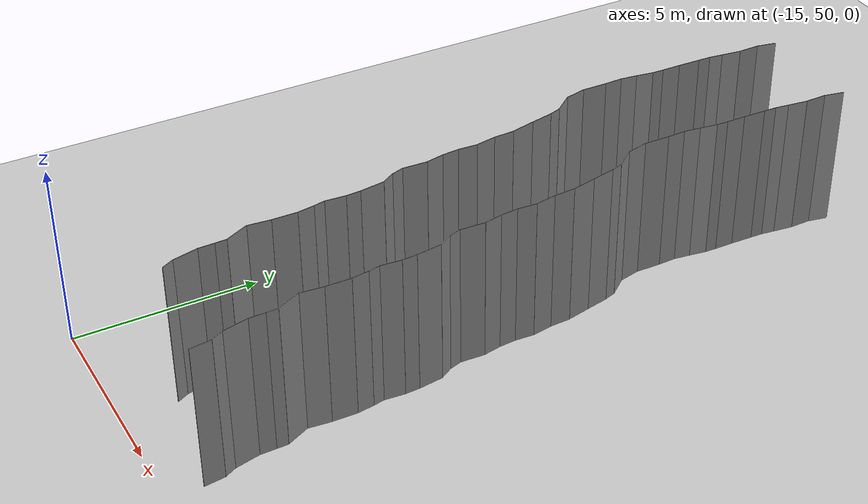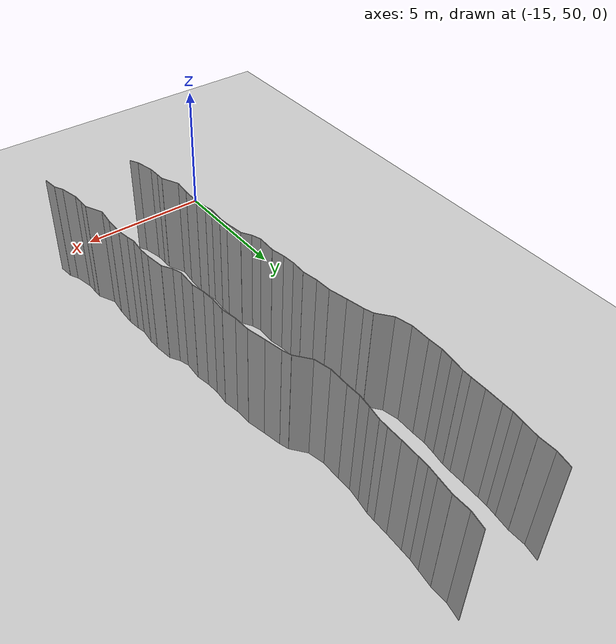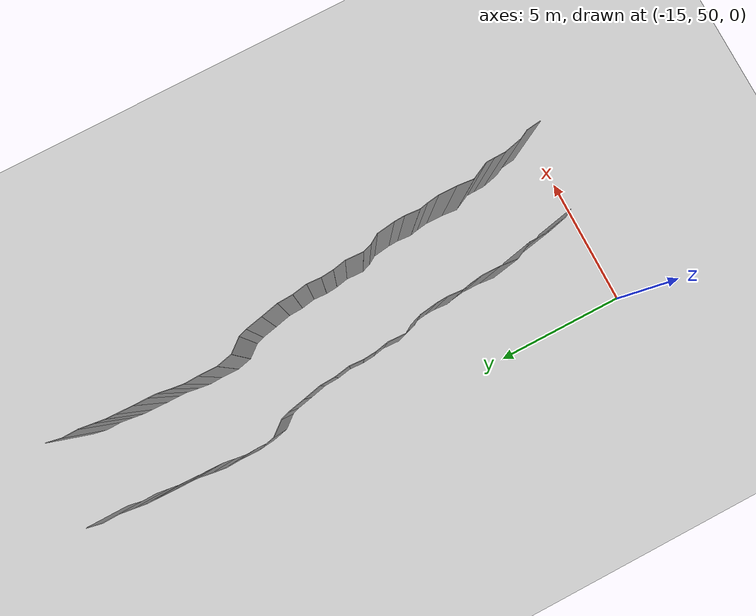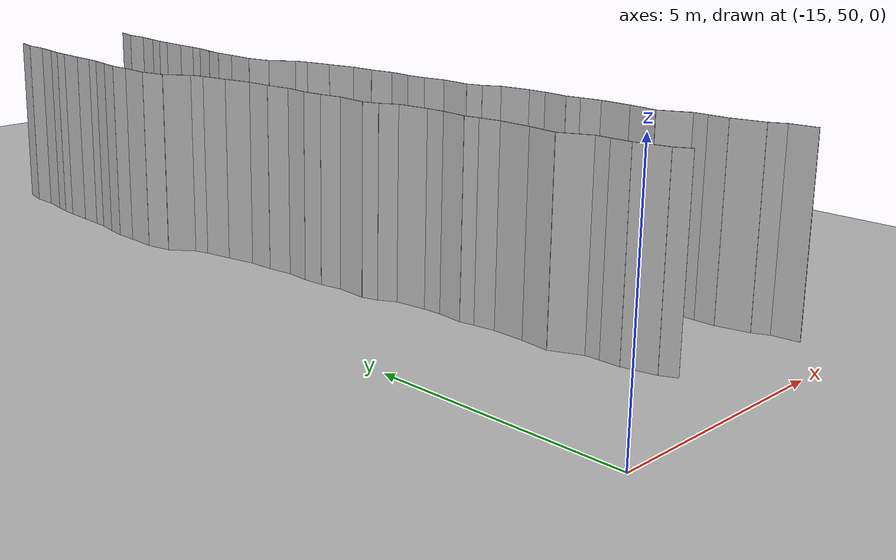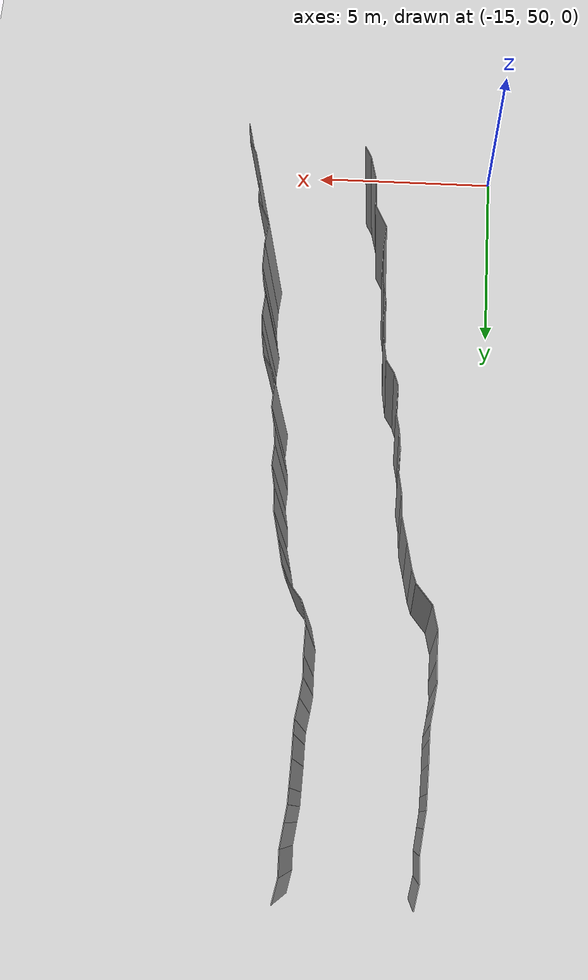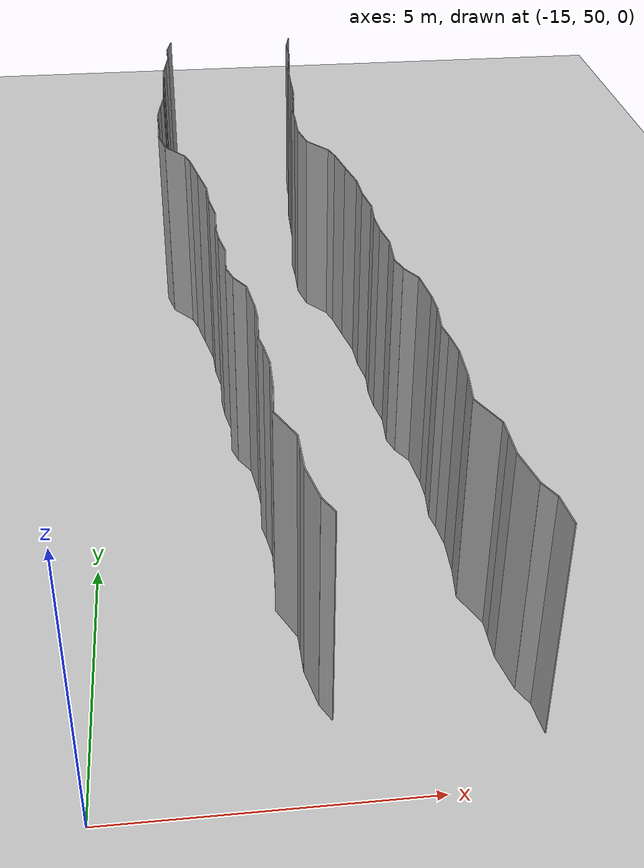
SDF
<sdf version="1.6">
 <world name="default">
  <model name="ground_plane">
   <static>1</static>
   <link name="link">
    <collision name="collision">
     <geometry><plane><normal>0 0 1</normal><size>200 200</size></plane></geometry>
     <surface><friction><ode><mu>100</mu><mu2>50</mu2></ode></friction></surface>
    </collision>
    <visual name="visual">
     <cast_shadows>0</cast_shadows>
     <geometry><plane><normal>0 0 1</normal><size>200 200</size></plane></geometry>
     <material>
      <script><uri>file://media/materials/scripts/gazebo.material</uri><name>Gazebo/Grey</name></script>
     </material>
    </visual>
   </link>
   <pose>0 100 0 0 -0 0</pose>
  </model>
  <model name="wall_225">
   <static>1</static>
   <pose>-8.4091324726453 51.185983408553675 2 0 0 0.12366486450464076</pose>
   <link name="link">
    <collision name="collision"><geometry><box><size>0.02 0.565078163314 4</size></box></geometry></collision>
    <visual name="visual">
     <material>
      <script><name>Gazebo/Grey</name><uri>file://media/materials/scripts/gazebo.material</uri></script>
     </material>
     <geometry><box><size>0.02 0.565078163314 4</size></box></geometry>
    </visual>
   </link>
  </model>
  <model name="wall_226">
   <static>1</static>
   <pose>-11.526501100073894 51.62103143087993 2 0 0 0.49010124288179624</pose>
   <link name="link">
    <collision name="collision"><geometry><box><size>0.02 0.350604594825 4</size></box></geometry></collision>
    <visual name="visual">
     <material>
      <script><name>Gazebo/Grey</name><uri>file://media/materials/scripts/gazebo.material</uri></script>
     </material>
     <geometry><box><size>0.02 0.350604594825 4</size></box></geometry>
    </visual>
   </link>
  </model>
  <model name="wall_227">
   <static>1</static>
   <pose>-8.526501100073894 51.62103143087993 2 0 0 0.49010124288179624</pose>
   <link name="link">
    <collision name="collision"><geometry><box><size>0.02 0.350604594825 4</size></box></geometry></collision>
    <visual name="visual">
     <material>
      <script><name>Gazebo/Grey</name><uri>file://media/materials/scripts/gazebo.material</uri></script>
     </material>
     <geometry><box><size>0.02 0.350604594825 4</size></box></geometry>
    </visual>
   </link>
  </model>
  <model name="wall_228">
   <static>1</static>
   <pose>-11.687346117456519 52.11088573953479 2 0 0 0.22956322239798616</pose>
   <link name="link">
    <collision name="collision"><geometry><box><size>0.02 0.688435881109 4</size></box></geometry></collision>
    <visual name="visual">
     <material>
      <script><name>Gazebo/Grey</name><uri>file://media/materials/scripts/gazebo.material</uri></script>
     </material>
     <geometry><box><size>0.02 0.688435881109 4</size></box></geometry>
    </visual>
   </link>
  </model>
  <model name="wall_229">
   <static>1</static>
   <pose>-8.687346117456519 52.11088573953479 2 0 0 0.22956322239798616</pose>
   <link name="link">
    <collision name="collision"><geometry><box><size>0.02 0.688435881109 4</size></box></geometry></collision>
    <visual name="visual">
     <material>
      <script><name>Gazebo/Grey</name><uri>file://media/materials/scripts/gazebo.material</uri></script>
     </material>
     <geometry><box><size>0.02 0.688435881109 4</size></box></geometry>
    </visual>
   </link>
  </model>
  <model name="wall_230">
   <static>1</static>
   <pose>-11.770016122936706 52.66185647596197 2 0 0 0.020121417062372356</pose>
   <link name="link">
    <collision name="collision"><geometry><box><size>0.02 0.431653482045 4</size></box></geometry></collision>
    <visual name="visual">
     <material>
      <script><name>Gazebo/Grey</name><uri>file://media/materials/scripts/gazebo.material</uri></script>
     </material>
     <geometry><box><size>0.02 0.431653482045 4</size></box></geometry>
    </visual>
   </link>
  </model>
  <model name="wall_231">
   <static>1</static>
   <pose>-8.770016122936706 52.66185647596197 2 0 0 0.020121417062372356</pose>
   <link name="link">
    <collision name="collision"><geometry><box><size>0.02 0.431653482045 4</size></box></geometry></collision>
    <visual name="visual">
     <material>
      <script><name>Gazebo/Grey</name><uri>file://media/materials/scripts/gazebo.material</uri></script>
     </material>
     <geometry><box><size>0.02 0.431653482045 4</size></box></geometry>
    </visual>
   </link>
  </model>
  <model name="wall_232">
   <static>1</static>
   <pose>-11.778300109894765 53.031158300693775 2 0 0 0.025669006543937434</pose>
   <link name="link">
    <collision name="collision"><geometry><box><size>0.02 0.307138727525 4</size></box></geometry></collision>
    <visual name="visual">
     <material>
      <script><name>Gazebo/Grey</name><uri>file://media/materials/scripts/gazebo.material</uri></script>
     </material>
     <geometry><box><size>0.02 0.307138727525 4</size></box></geometry>
    </visual>
   </link>
  </model>
  <model name="wall_233">
   <static>1</static>
   <pose>-8.778300109894765 53.031158300693775 2 0 0 0.025669006543937434</pose>
   <link name="link">
    <collision name="collision"><geometry><box><size>0.02 0.307138727525 4</size></box></geometry></collision>
    <visual name="visual">
     <material>
      <script><name>Gazebo/Grey</name><uri>file://media/materials/scripts/gazebo.material</uri></script>
     </material>
     <geometry><box><size>0.02 0.307138727525 4</size></box></geometry>
    </visual>
   </link>
  </model>
  <model name="wall_234">
   <static>1</static>
   <pose>-11.934427930330946 53.493415283125586 2 0 0 0.4579755117000583</pose>
   <link name="link">
    <collision name="collision"><geometry><box><size>0.02 0.688418319653 4</size></box></geometry></collision>
    <visual name="visual">
     <material>
      <script><name>Gazebo/Grey</name><uri>file://media/materials/scripts/gazebo.material</uri></script>
     </material>
     <geometry><box><size>0.02 0.688418319653 4</size></box></geometry>
    </visual>
   </link>
  </model>
  <model name="wall_235">
   <static>1</static>
   <pose>-8.934427930330946 53.493415283125586 2 0 0 0.4579755117000583</pose>
   <link name="link">
    <collision name="collision"><geometry><box><size>0.02 0.688418319653 4</size></box></geometry></collision>
    <visual name="visual">
     <material>
      <script><name>Gazebo/Grey</name><uri>file://media/materials/scripts/gazebo.material</uri></script>
     </material>
     <geometry><box><size>0.02 0.688418319653 4</size></box></geometry>
    </visual>
   </link>
  </model>
  <model name="wall_236">
   <static>1</static>
   <pose>-12.057933612461134 54.111133728201075 2 0 0 -0.09255818220596103</pose>
   <link name="link">
    <collision name="collision"><geometry><box><size>0.02 0.620616992679 4</size></box></geometry></collision>
    <visual name="visual">
     <material>
      <script><name>Gazebo/Grey</name><uri>file://media/materials/scripts/gazebo.material</uri></script>
     </material>
     <geometry><box><size>0.02 0.620616992679 4</size></box></geometry>
    </visual>
   </link>
  </model>
  <model name="wall_237">
   <static>1</static>
   <pose>-9.057933612461134 54.111133728201075 2 0 0 -0.09255818220596103</pose>
   <link name="link">
    <collision name="collision"><geometry><box><size>0.02 0.620616992679 4</size></box></geometry></collision>
    <visual name="visual">
     <material>
      <script><name>Gazebo/Grey</name><uri>file://media/materials/scripts/gazebo.material</uri></script>
     </material>
     <geometry><box><size>0.02 0.620616992679 4</size></box></geometry>
    </visual>
   </link>
  </model>
  <model name="wall_238">
   <static>1</static>
   <pose>-12.0257172992353 54.758009120854574 2 0 0 -0.0104635592902906</pose>
   <link name="link">
    <collision name="collision"><geometry><box><size>0.02 0.675827309971 4</size></box></geometry></collision>
    <visual name="visual">
     <material>
      <script><name>Gazebo/Grey</name><uri>file://media/materials/scripts/gazebo.material</uri></script>
     </material>
     <geometry><box><size>0.02 0.675827309971 4</size></box></geometry>
    </visual>
   </link>
  </model>
  <model name="wall_239">
   <static>1</static>
   <pose>-9.0257172992353 54.758009120854574 2 0 0 -0.0104635592902906</pose>
   <link name="link">
    <collision name="collision"><geometry><box><size>0.02 0.675827309971 4</size></box></geometry></collision>
    <visual name="visual">
     <material>
      <script><name>Gazebo/Grey</name><uri>file://media/materials/scripts/gazebo.material</uri></script>
     </material>
     <geometry><box><size>0.02 0.675827309971 4</size></box></geometry>
    </visual>
   </link>
  </model>
  <model name="wall_240">
   <static>1</static>
   <pose>-12.055179504824325 55.322588303465835 2 0 0 0.14455259563054612</pose>
   <link name="link">
    <collision name="collision"><geometry><box><size>0.02 0.458146310053 4</size></box></geometry></collision>
    <visual name="visual">
     <material>
      <script><name>Gazebo/Grey</name><uri>file://media/materials/scripts/gazebo.material</uri></script>
     </material>
     <geometry><box><size>0.02 0.458146310053 4</size></box></geometry>
    </visual>
   </link>
  </model>
  <model name="wall_241">
   <static>1</static>
   <pose>-9.055179504824325 55.322588303465835 2 0 0 0.14455259563054612</pose>
   <link name="link">
    <collision name="collision"><geometry><box><size>0.02 0.458146310053 4</size></box></geometry></collision>
    <visual name="visual">
     <material>
      <script><name>Gazebo/Grey</name><uri>file://media/materials/scripts/gazebo.material</uri></script>
     </material>
     <geometry><box><size>0.02 0.458146310053 4</size></box></geometry>
    </visual>
   </link>
  </model>
  <model name="wall_242">
   <static>1</static>
   <pose>-12.120790818001238 55.70074069031256 2 0 0 0.2120771119445478</pose>
   <link name="link">
    <collision name="collision"><geometry><box><size>0.02 0.30987931682 4</size></box></geometry></collision>
    <visual name="visual">
     <material>
      <script><name>Gazebo/Grey</name><uri>file://media/materials/scripts/gazebo.material</uri></script>
     </material>
     <geometry><box><size>0.02 0.30987931682 4</size></box></geometry>
    </visual>
   </link>
  </model>
  <model name="wall_243">
   <static>1</static>
   <pose>-9.120790818001238 55.70074069031256 2 0 0 0.2120771119445478</pose>
   <link name="link">
    <collision name="collision"><geometry><box><size>0.02 0.30987931682 4</size></box></geometry></collision>
    <visual name="visual">
     <material>
      <script><name>Gazebo/Grey</name><uri>file://media/materials/scripts/gazebo.material</uri></script>
     </material>
     <geometry><box><size>0.02 0.30987931682 4</size></box></geometry>
    </visual>
   </link>
  </model>
  <model name="wall_244">
   <static>1</static>
   <pose>-12.132452690756942 56.13211944054541 2 0 0 -0.07471149206691437</pose>
   <link name="link">
    <collision name="collision"><geometry><box><size>0.02 0.561386826346 4</size></box></geometry></collision>
    <visual name="visual">
     <material>
      <script><name>Gazebo/Grey</name><uri>file://media/materials/scripts/gazebo.material</uri></script>
     </material>
     <geometry><box><size>0.02 0.561386826346 4</size></box></geometry>
    </visual>
   </link>
  </model>
  <model name="wall_245">
   <static>1</static>
   <pose>-9.132452690756942 56.13211944054541 2 0 0 -0.07471149206691437</pose>
   <link name="link">
    <collision name="collision"><geometry><box><size>0.02 0.561386826346 4</size></box></geometry></collision>
    <visual name="visual">
     <material>
      <script><name>Gazebo/Grey</name><uri>file://media/materials/scripts/gazebo.material</uri></script>
     </material>
     <geometry><box><size>0.02 0.561386826346 4</size></box></geometry>
    </visual>
   </link>
  </model>
  <model name="wall_246">
   <static>1</static>
   <pose>-12.121435128675135 56.60874091162917 2 0 0 0.05045738012701771</pose>
   <link name="link">
    <collision name="collision"><geometry><box><size>0.02 0.393923511494 4</size></box></geometry></collision>
    <visual name="visual">
     <material>
      <script><name>Gazebo/Grey</name><uri>file://media/materials/scripts/gazebo.material</uri></script>
     </material>
     <geometry><box><size>0.02 0.393923511494 4</size></box></geometry>
    </visual>
   </link>
  </model>
  <model name="wall_247">
   <static>1</static>
   <pose>-9.121435128675135 56.60874091162917 2 0 0 0.05045738012701771</pose>
   <link name="link">
    <collision name="collision"><geometry><box><size>0.02 0.393923511494 4</size></box></geometry></collision>
    <visual name="visual">
     <material>
      <script><name>Gazebo/Grey</name><uri>file://media/materials/scripts/gazebo.material</uri></script>
     </material>
     <geometry><box><size>0.02 0.393923511494 4</size></box></geometry>
    </visual>
   </link>
  </model>
  <model name="wall_248">
   <static>1</static>
   <pose>-12.178891941756076 57.14210059056955 2 0 0 0.14023794426656605</pose>
   <link name="link">
    <collision name="collision"><geometry><box><size>0.02 0.679972645701 4</size></box></geometry></collision>
    <visual name="visual">
     <material>
      <script><name>Gazebo/Grey</name><uri>file://media/materials/scripts/gazebo.material</uri></script>
     </material>
     <geometry><box><size>0.02 0.679972645701 4</size></box></geometry>
    </visual>
   </link>
  </model>
  <model name="wall_249">
   <static>1</static>
   <pose>-9.178891941756076 57.14210059056955 2 0 0 0.14023794426656605</pose>
   <link name="link">
    <collision name="collision"><geometry><box><size>0.02 0.679972645701 4</size></box></geometry></collision>
    <visual name="visual">
     <material>
      <script><name>Gazebo/Grey</name><uri>file://media/materials/scripts/gazebo.material</uri></script>
     </material>
     <geometry><box><size>0.02 0.679972645701 4</size></box></geometry>
    </visual>
   </link>
  </model>
  <model name="wall_250">
   <static>1</static>
   <pose>-12.331725026681049 57.648107501009775 2 0 0 0.5563086370045287</pose>
   <link name="link">
    <collision name="collision"><geometry><box><size>0.02 0.398860791449 4</size></box></geometry></collision>
    <visual name="visual">
     <material>
      <script><name>Gazebo/Grey</name><uri>file://media/materials/scripts/gazebo.material</uri></script>
     </material>
     <geometry><box><size>0.02 0.398860791449 4</size></box></geometry>
    </visual>
   </link>
  </model>
  <model name="wall_251">
   <static>1</static>
   <pose>-9.331725026681049 57.648107501009775 2 0 0 0.5563086370045287</pose>
   <link name="link">
    <collision name="collision"><geometry><box><size>0.02 0.398860791449 4</size></box></geometry></collision>
    <visual name="visual">
     <material>
      <script><name>Gazebo/Grey</name><uri>file://media/materials/scripts/gazebo.material</uri></script>
     </material>
     <geometry><box><size>0.02 0.398860791449 4</size></box></geometry>
    </visual>
   </link>
  </model>
  <model name="wall_252">
   <static>1</static>
   <pose>-12.492031032863933 57.98367535519376 2 0 0 0.3195429042637615</pose>
   <link name="link">
    <collision name="collision"><geometry><box><size>0.02 0.350143667208 4</size></box></geometry></collision>
    <visual name="visual">
     <material>
      <script><name>Gazebo/Grey</name><uri>file://media/materials/scripts/gazebo.material</uri></script>
     </material>
     <geometry><box><size>0.02 0.350143667208 4</size></box></geometry>
    </visual>
   </link>
  </model>
  <model name="wall_253">
   <static>1</static>
   <pose>-9.492031032863933 57.98367535519376 2 0 0 0.3195429042637615</pose>
   <link name="link">
    <collision name="collision"><geometry><box><size>0.02 0.350143667208 4</size></box></geometry></collision>
    <visual name="visual">
     <material>
      <script><name>Gazebo/Grey</name><uri>file://media/materials/scripts/gazebo.material</uri></script>
     </material>
     <geometry><box><size>0.02 0.350143667208 4</size></box></geometry>
    </visual>
   </link>
  </model>
  <model name="wall_254">
   <static>1</static>
   <pose>-12.533954928185123 58.48573091513703 2 0 0 -0.038902608693368576</pose>
   <link name="link">
    <collision name="collision"><geometry><box><size>0.02 0.672200632588 4</size></box></geometry></collision>
    <visual name="visual">
     <material>
      <script><name>Gazebo/Grey</name><uri>file://media/materials/scripts/gazebo.material</uri></script>
     </material>
     <geometry><box><size>0.02 0.672200632588 4</size></box></geometry>
    </visual>
   </link>
  </model>
  <model name="wall_255">
   <static>1</static>
   <pose>-9.533954928185123 58.48573091513703 2 0 0 -0.038902608693368576</pose>
   <link name="link">
    <collision name="collision"><geometry><box><size>0.02 0.672200632588 4</size></box></geometry></collision>
    <visual name="visual">
     <material>
      <script><name>Gazebo/Grey</name><uri>file://media/materials/scripts/gazebo.material</uri></script>
     </material>
     <geometry><box><size>0.02 0.672200632588 4</size></box></geometry>
    </visual>
   </link>
  </model>
  <model name="wall_256">
   <static>1</static>
   <pose>-12.56948140057929 59.063710256429516 2 0 0 0.19807726402543704</pose>
   <link name="link">
    <collision name="collision"><geometry><box><size>0.02 0.493924470779 4</size></box></geometry></collision>
    <visual name="visual">
     <material>
      <script><name>Gazebo/Grey</name><uri>file://media/materials/scripts/gazebo.material</uri></script>
     </material>
     <geometry><box><size>0.02 0.493924470779 4</size></box></geometry>
    </visual>
   </link>
  </model>
  <model name="wall_257">
   <static>1</static>
   <pose>-9.56948140057929 59.063710256429516 2 0 0 0.19807726402543704</pose>
   <link name="link">
    <collision name="collision"><geometry><box><size>0.02 0.493924470779 4</size></box></geometry></collision>
    <visual name="visual">
     <material>
      <script><name>Gazebo/Grey</name><uri>file://media/materials/scripts/gazebo.material</uri></script>
     </material>
     <geometry><box><size>0.02 0.493924470779 4</size></box></geometry>
    </visual>
   </link>
  </model>
  <model name="wall_258">
   <static>1</static>
   <pose>-12.637711821213204 59.53761386793697 2 0 0 0.08450313156207467</pose>
   <link name="link">
    <collision name="collision"><geometry><box><size>0.02 0.465200537626 4</size></box></geometry></collision>
    <visual name="visual">
     <material>
      <script><name>Gazebo/Grey</name><uri>file://media/materials/scripts/gazebo.material</uri></script>
     </material>
     <geometry><box><size>0.02 0.465200537626 4</size></box></geometry>
    </visual>
   </link>
  </model>
  <model name="wall_259">
   <static>1</static>
   <pose>-9.637711821213204 59.53761386793697 2 0 0 0.08450313156207467</pose>
   <link name="link">
    <collision name="collision"><geometry><box><size>0.02 0.465200537626 4</size></box></geometry></collision>
    <visual name="visual">
     <material>
      <script><name>Gazebo/Grey</name><uri>file://media/materials/scripts/gazebo.material</uri></script>
     </material>
     <geometry><box><size>0.02 0.465200537626 4</size></box></geometry>
    </visual>
   </link>
  </model>
  <model name="wall_260">
   <static>1</static>
   <pose>-12.643455173412775 60.03129248325916 2 0 0 -0.05297929317373427</pose>
   <link name="link">
    <collision name="collision"><geometry><box><size>0.02 0.524552638499 4</size></box></geometry></collision>
    <visual name="visual">
     <material>
      <script><name>Gazebo/Grey</name><uri>file://media/materials/scripts/gazebo.material</uri></script>
     </material>
     <geometry><box><size>0.02 0.524552638499 4</size></box></geometry>
    </visual>
   </link>
  </model>
  <model name="wall_261">
   <static>1</static>
   <pose>-9.643455173412775 60.03129248325916 2 0 0 -0.05297929317373427</pose>
   <link name="link">
    <collision name="collision"><geometry><box><size>0.02 0.524552638499 4</size></box></geometry></collision>
    <visual name="visual">
     <material>
      <script><name>Gazebo/Grey</name><uri>file://media/materials/scripts/gazebo.material</uri></script>
     </material>
     <geometry><box><size>0.02 0.524552638499 4</size></box></geometry>
    </visual>
   </link>
  </model>
  <model name="wall_262">
   <static>1</static>
   <pose>-12.678177053698127 60.56942158845183 2 0 0 0.17420081988752795</pose>
   <link name="link">
    <collision name="collision"><geometry><box><size>0.02 0.560931043143 4</size></box></geometry></collision>
    <visual name="visual">
     <material>
      <script><name>Gazebo/Grey</name><uri>file://media/materials/scripts/gazebo.material</uri></script>
     </material>
     <geometry><box><size>0.02 0.560931043143 4</size></box></geometry>
    </visual>
   </link>
  </model>
  <model name="wall_263">
   <static>1</static>
   <pose>-9.678177053698127 60.56942158845183 2 0 0 0.17420081988752795</pose>
   <link name="link">
    <collision name="collision"><geometry><box><size>0.02 0.560931043143 4</size></box></geometry></collision>
    <visual name="visual">
     <material>
      <script><name>Gazebo/Grey</name><uri>file://media/materials/scripts/gazebo.material</uri></script>
     </material>
     <geometry><box><size>0.02 0.560931043143 4</size></box></geometry>
    </visual>
   </link>
  </model>
  <model name="wall_264">
   <static>1</static>
   <pose>-12.74002925005721 61.13020225593384 2 0 0 0.0465000746689706</pose>
   <link name="link">
    <collision name="collision"><geometry><box><size>0.02 0.569735623056 4</size></box></geometry></collision>
    <visual name="visual">
     <material>
      <script><name>Gazebo/Grey</name><uri>file://media/materials/scripts/gazebo.material</uri></script>
     </material>
     <geometry><box><size>0.02 0.569735623056 4</size></box></geometry>
    </visual>
   </link>
  </model>
  <model name="wall_265">
   <static>1</static>
   <pose>-9.74002925005721 61.13020225593384 2 0 0 0.0465000746689706</pose>
   <link name="link">
    <collision name="collision"><geometry><box><size>0.02 0.569735623056 4</size></box></geometry></collision>
    <visual name="visual">
     <material>
      <script><name>Gazebo/Grey</name><uri>file://media/materials/scripts/gazebo.material</uri></script>
     </material>
     <geometry><box><size>0.02 0.569735623056 4</size></box></geometry>
    </visual>
   </link>
  </model>
  <model name="wall_266">
   <static>1</static>
   <pose>-12.82657273614885 61.73810548296544 2 0 0 0.222931789041756</pose>
   <link name="link">
    <collision name="collision"><geometry><box><size>0.02 0.66309601416 4</size></box></geometry></collision>
    <visual name="visual">
     <material>
      <script><name>Gazebo/Grey</name><uri>file://media/materials/scripts/gazebo.material</uri></script>
     </material>
     <geometry><box><size>0.02 0.66309601416 4</size></box></geometry>
    </visual>
   </link>
  </model>
  <model name="wall_267">
   <static>1</static>
   <pose>-9.82657273614885 61.73810548296544 2 0 0 0.222931789041756</pose>
   <link name="link">
    <collision name="collision"><geometry><box><size>0.02 0.66309601416 4</size></box></geometry></collision>
    <visual name="visual">
     <material>
      <script><name>Gazebo/Grey</name><uri>file://media/materials/scripts/gazebo.material</uri></script>
     </material>
     <geometry><box><size>0.02 0.66309601416 4</size></box></geometry>
    </visual>
   </link>
  </model>
  <model name="wall_268">
   <static>1</static>
   <pose>-12.965458348316519 62.37040478806284 2 0 0 0.2091704129464352</pose>
   <link name="link">
    <collision name="collision"><geometry><box><size>0.02 0.631680344686 4</size></box></geometry></collision>
    <visual name="visual">
     <material>
      <script><name>Gazebo/Grey</name><uri>file://media/materials/scripts/gazebo.material</uri></script>
     </material>
     <geometry><box><size>0.02 0.631680344686 4</size></box></geometry>
    </visual>
   </link>
  </model>
  <model name="wall_269">
   <static>1</static>
   <pose>-9.965458348316519 62.37040478806284 2 0 0 0.2091704129464352</pose>
   <link name="link">
    <collision name="collision"><geometry><box><size>0.02 0.631680344686 4</size></box></geometry></collision>
    <visual name="visual">
     <material>
      <script><name>Gazebo/Grey</name><uri>file://media/materials/scripts/gazebo.material</uri></script>
     </material>
     <geometry><box><size>0.02 0.631680344686 4</size></box></geometry>
    </visual>
   </link>
  </model>
  <model name="wall_270">
   <static>1</static>
   <pose>-13.082119490030415 62.83552795252125 2 0 0 0.3161018966660662</pose>
   <link name="link">
    <collision name="collision"><geometry><box><size>0.02 0.328615860882 4</size></box></geometry></collision>
    <visual name="visual">
     <material>
      <script><name>Gazebo/Grey</name><uri>file://media/materials/scripts/gazebo.material</uri></script>
     </material>
     <geometry><box><size>0.02 0.328615860882 4</size></box></geometry>
    </visual>
   </link>
  </model>
  <model name="wall_271">
   <static>1</static>
   <pose>-10.082119490030415 62.83552795252125 2 0 0 0.3161018966660662</pose>
   <link name="link">
    <collision name="collision"><geometry><box><size>0.02 0.328615860882 4</size></box></geometry></collision>
    <visual name="visual">
     <material>
      <script><name>Gazebo/Grey</name><uri>file://media/materials/scripts/gazebo.material</uri></script>
     </material>
     <geometry><box><size>0.02 0.328615860882 4</size></box></geometry>
    </visual>
   </link>
  </model>
  <model name="wall_272">
   <static>1</static>
   <pose>-13.333143768365181 63.23690041221308 2 0 0 0.6840768074427794</pose>
   <link name="link">
    <collision name="collision"><geometry><box><size>0.02 0.632785488975 4</size></box></geometry></collision>
    <visual name="visual">
     <material>
      <script><name>Gazebo/Grey</name><uri>file://media/materials/scripts/gazebo.material</uri></script>
     </material>
     <geometry><box><size>0.02 0.632785488975 4</size></box></geometry>
    </visual>
   </link>
  </model>
  <model name="wall_273">
   <static>1</static>
   <pose>-10.333143768365181 63.23690041221308 2 0 0 0.6840768074427794</pose>
   <link name="link">
    <collision name="collision"><geometry><box><size>0.02 0.632785488975 4</size></box></geometry></collision>
    <visual name="visual">
     <material>
      <script><name>Gazebo/Grey</name><uri>file://media/materials/scripts/gazebo.material</uri></script>
     </material>
     <geometry><box><size>0.02 0.632785488975 4</size></box></geometry>
    </visual>
   </link>
  </model>
  <model name="wall_274">
   <static>1</static>
   <pose>-13.600523112362438 63.76773057585054 2 0 0 0.23184233254086475</pose>
   <link name="link">
    <collision name="collision"><geometry><box><size>0.02 0.586953913039 4</size></box></geometry></collision>
    <visual name="visual">
     <material>
      <script><name>Gazebo/Grey</name><uri>file://media/materials/scripts/gazebo.material</uri></script>
     </material>
     <geometry><box><size>0.02 0.586953913039 4</size></box></geometry>
    </visual>
   </link>
  </model>
  <model name="wall_275">
   <static>1</static>
   <pose>-10.600523112362438 63.76773057585054 2 0 0 0.23184233254086475</pose>
   <link name="link">
    <collision name="collision"><geometry><box><size>0.02 0.586953913039 4</size></box></geometry></collision>
    <visual name="visual">
     <material>
      <script><name>Gazebo/Grey</name><uri>file://media/materials/scripts/gazebo.material</uri></script>
     </material>
     <geometry><box><size>0.02 0.586953913039 4</size></box></geometry>
    </visual>
   </link>
  </model>
  <model name="wall_276">
   <static>1</static>
   <pose>-13.664041570840233 64.39785529815755 2 0 0 -0.011360972775061802</pose>
   <link name="link">
    <collision name="collision"><geometry><box><size>0.02 0.68904410814 4</size></box></geometry></collision>
    <visual name="visual">
     <material>
      <script><name>Gazebo/Grey</name><uri>file://media/materials/scripts/gazebo.material</uri></script>
     </material>
     <geometry><box><size>0.02 0.68904410814 4</size></box></geometry>
    </visual>
   </link>
  </model>
  <model name="wall_277">
   <static>1</static>
   <pose>-10.664041570840233 64.39785529815755 2 0 0 -0.011360972775061802</pose>
   <link name="link">
    <collision name="collision"><geometry><box><size>0.02 0.68904410814 4</size></box></geometry></collision>
    <visual name="visual">
     <material>
      <script><name>Gazebo/Grey</name><uri>file://media/materials/scripts/gazebo.material</uri></script>
     </material>
     <geometry><box><size>0.02 0.68904410814 4</size></box></geometry>
    </visual>
   </link>
  </model>
  <model name="wall_278">
   <static>1</static>
   <pose>-13.66957706408939 64.9880455637631 2 0 0 0.038442111321285805</pose>
   <link name="link">
    <collision name="collision"><geometry><box><size>0.02 0.49174419468 4</size></box></geometry></collision>
    <visual name="visual">
     <material>
      <script><name>Gazebo/Grey</name><uri>file://media/materials/scripts/gazebo.material</uri></script>
     </material>
     <geometry><box><size>0.02 0.49174419468 4</size></box></geometry>
    </visual>
   </link>
  </model>
  <model name="wall_279">
   <static>1</static>
   <pose>-10.66957706408939 64.9880455637631 2 0 0 0.038442111321285805</pose>
   <link name="link">
    <collision name="collision"><geometry><box><size>0.02 0.49174419468 4</size></box></geometry></collision>
    <visual name="visual">
     <material>
      <script><name>Gazebo/Grey</name><uri>file://media/materials/scripts/gazebo.material</uri></script>
     </material>
     <geometry><box><size>0.02 0.49174419468 4</size></box></geometry>
    </visual>
   </link>
  </model>
  <model name="wall_280">
   <static>1</static>
   <pose>-13.65124834704001 65.4585935546827 2 0 0 -0.12291426643695709</pose>
   <link name="link">
    <collision name="collision"><geometry><box><size>0.02 0.453133737316 4</size></box></geometry></collision>
    <visual name="visual">
     <material>
      <script><name>Gazebo/Grey</name><uri>file://media/materials/scripts/gazebo.material</uri></script>
     </material>
     <geometry><box><size>0.02 0.453133737316 4</size></box></geometry>
    </visual>
   </link>
  </model>
  <model name="wall_281">
   <static>1</static>
   <pose>-10.65124834704001 65.4585935546827 2 0 0 -0.12291426643695709</pose>
   <link name="link">
    <collision name="collision"><geometry><box><size>0.02 0.453133737316 4</size></box></geometry></collision>
    <visual name="visual">
     <material>
      <script><name>Gazebo/Grey</name><uri>file://media/materials/scripts/gazebo.material</uri></script>
     </material>
     <geometry><box><size>0.02 0.453133737316 4</size></box></geometry>
    </visual>
   </link>
  </model>
  <model name="wall_282">
   <static>1</static>
   <pose>-13.587234314435651 65.91986413316356 2 0 0 -0.15208965141510616</pose>
   <link name="link">
    <collision name="collision"><geometry><box><size>0.02 0.478347803917 4</size></box></geometry></collision>
    <visual name="visual">
     <material>
      <script><name>Gazebo/Grey</name><uri>file://media/materials/scripts/gazebo.material</uri></script>
     </material>
     <geometry><box><size>0.02 0.478347803917 4</size></box></geometry>
    </visual>
   </link>
  </model>
  <model name="wall_283">
   <static>1</static>
   <pose>-10.587234314435651 65.91986413316356 2 0 0 -0.15208965141510616</pose>
   <link name="link">
    <collision name="collision"><geometry><box><size>0.02 0.478347803917 4</size></box></geometry></collision>
    <visual name="visual">
     <material>
      <script><name>Gazebo/Grey</name><uri>file://media/materials/scripts/gazebo.material</uri></script>
     </material>
     <geometry><box><size>0.02 0.478347803917 4</size></box></geometry>
    </visual>
   </link>
  </model>
  <model name="wall_284">
   <static>1</static>
   <pose>-13.546241742775818 66.31405264552582 2 0 0 -0.030139856915729398</pose>
   <link name="link">
    <collision name="collision"><geometry><box><size>0.02 0.315694338208 4</size></box></geometry></collision>
    <visual name="visual">
     <material>
      <script><name>Gazebo/Grey</name><uri>file://media/materials/scripts/gazebo.material</uri></script>
     </material>
     <geometry><box><size>0.02 0.315694338208 4</size></box></geometry>
    </visual>
   </link>
  </model>
  <model name="wall_285">
   <static>1</static>
   <pose>-10.546241742775818 66.31405264552582 2 0 0 -0.030139856915729398</pose>
   <link name="link">
    <collision name="collision"><geometry><box><size>0.02 0.315694338208 4</size></box></geometry></collision>
    <visual name="visual">
     <material>
      <script><name>Gazebo/Grey</name><uri>file://media/materials/scripts/gazebo.material</uri></script>
     </material>
     <geometry><box><size>0.02 0.315694338208 4</size></box></geometry>
    </visual>
   </link>
  </model>
  <model name="wall_286">
   <static>1</static>
   <pose>-13.540768882826438 66.7337937611588 2 0 0 -0.0027335162929253893</pose>
   <link name="link">
    <collision name="collision"><geometry><box><size>0.02 0.523933229747 4</size></box></geometry></collision>
    <visual name="visual">
     <material>
      <script><name>Gazebo/Grey</name><uri>file://media/materials/scripts/gazebo.material</uri></script>
     </material>
     <geometry><box><size>0.02 0.523933229747 4</size></box></geometry>
    </visual>
   </link>
  </model>
  <model name="wall_287">
   <static>1</static>
   <pose>-10.540768882826438 66.7337937611588 2 0 0 -0.0027335162929253893</pose>
   <link name="link">
    <collision name="collision"><geometry><box><size>0.02 0.523933229747 4</size></box></geometry></collision>
    <visual name="visual">
     <material>
      <script><name>Gazebo/Grey</name><uri>file://media/materials/scripts/gazebo.material</uri></script>
     </material>
     <geometry><box><size>0.02 0.523933229747 4</size></box></geometry>
    </visual>
   </link>
  </model>
  <model name="wall_288">
   <static>1</static>
   <pose>-13.53194489943991 67.30636593817196 2 0 0 -0.02609749767586123</pose>
   <link name="link">
    <collision name="collision"><geometry><box><size>0.02 0.621424689484 4</size></box></geometry></collision>
    <visual name="visual">
     <material>
      <script><name>Gazebo/Grey</name><uri>file://media/materials/scripts/gazebo.material</uri></script>
     </material>
     <geometry><box><size>0.02 0.621424689484 4</size></box></geometry>
    </visual>
   </link>
  </model>
  <model name="wall_289">
   <static>1</static>
   <pose>-10.53194489943991 67.30636593817196 2 0 0 -0.02609749767586123</pose>
   <link name="link">
    <collision name="collision"><geometry><box><size>0.02 0.621424689484 4</size></box></geometry></collision>
    <visual name="visual">
     <material>
      <script><name>Gazebo/Grey</name><uri>file://media/materials/scripts/gazebo.material</uri></script>
     </material>
     <geometry><box><size>0.02 0.621424689484 4</size></box></geometry>
    </visual>
   </link>
  </model>
  <model name="wall_290">
   <static>1</static>
   <pose>-13.51955282640597 67.79161398733258 2 0 0 -0.024526355359960023</pose>
   <link name="link">
    <collision name="collision"><geometry><box><size>0.02 0.349388097158 4</size></box></geometry></collision>
    <visual name="visual">
     <material>
      <script><name>Gazebo/Grey</name><uri>file://media/materials/scripts/gazebo.material</uri></script>
     </material>
     <geometry><box><size>0.02 0.349388097158 4</size></box></geometry>
    </visual>
   </link>
  </model>
  <model name="wall_291">
   <static>1</static>
   <pose>-10.51955282640597 67.79161398733258 2 0 0 -0.024526355359960023</pose>
   <link name="link">
    <collision name="collision"><geometry><box><size>0.02 0.349388097158 4</size></box></geometry></collision>
    <visual name="visual">
     <material>
      <script><name>Gazebo/Grey</name><uri>file://media/materials/scripts/gazebo.material</uri></script>
     </material>
     <geometry><box><size>0.02 0.349388097158 4</size></box></geometry>
    </visual>
   </link>
  </model>
  <model name="wall_292">
   <static>1</static>
   <pose>-13.491202034748074 68.15337397141091 2 0 0 -0.12791472706596188</pose>
   <link name="link">
    <collision name="collision"><geometry><box><size>0.02 0.377319630201 4</size></box></geometry></collision>
    <visual name="visual">
     <material>
      <script><name>Gazebo/Grey</name><uri>file://media/materials/scripts/gazebo.material</uri></script>
     </material>
     <geometry><box><size>0.02 0.377319630201 4</size></box></geometry>
    </visual>
   </link>
  </model>
  <model name="wall_293">
   <static>1</static>
   <pose>-10.491202034748074 68.15337397141091 2 0 0 -0.12791472706596188</pose>
   <link name="link">
    <collision name="collision"><geometry><box><size>0.02 0.377319630201 4</size></box></geometry></collision>
    <visual name="visual">
     <material>
      <script><name>Gazebo/Grey</name><uri>file://media/materials/scripts/gazebo.material</uri></script>
     </material>
     <geometry><box><size>0.02 0.377319630201 4</size></box></geometry>
    </visual>
   </link>
  </model>
  <model name="wall_294">
   <static>1</static>
   <pose>-13.433054550457362 68.61433675755784 2 0 0 -0.12381682480615726</pose>
   <link name="link">
    <collision name="collision"><geometry><box><size>0.02 0.551913805286 4</size></box></geometry></collision>
    <visual name="visual">
     <material>
      <script><name>Gazebo/Grey</name><uri>file://media/materials/scripts/gazebo.material</uri></script>
     </material>
     <geometry><box><size>0.02 0.551913805286 4</size></box></geometry>
    </visual>
   </link>
  </model>
  <model name="wall_295">
   <static>1</static>
   <pose>-10.433054550457362 68.61433675755784 2 0 0 -0.12381682480615726</pose>
   <link name="link">
    <collision name="collision"><geometry><box><size>0.02 0.551913805286 4</size></box></geometry></collision>
    <visual name="visual">
     <material>
      <script><name>Gazebo/Grey</name><uri>file://media/materials/scripts/gazebo.material</uri></script>
     </material>
     <geometry><box><size>0.02 0.551913805286 4</size></box></geometry>
    </visual>
   </link>
  </model>
  <model name="wall_296">
   <static>1</static>
   <pose>-13.405394205774828 69.17877676097628 2 0 0 0.022090768808058697</pose>
   <link name="link">
    <collision name="collision"><geometry><box><size>0.02 0.58133322624 4</size></box></geometry></collision>
    <visual name="visual">
     <material>
      <script><name>Gazebo/Grey</name><uri>file://media/materials/scripts/gazebo.material</uri></script>
     </material>
     <geometry><box><size>0.02 0.58133322624 4</size></box></geometry>
    </visual>
   </link>
  </model>
  <model name="wall_297">
   <static>1</static>
   <pose>-10.405394205774828 69.17877676097628 2 0 0 0.022090768808058697</pose>
   <link name="link">
    <collision name="collision"><geometry><box><size>0.02 0.58133322624 4</size></box></geometry></collision>
    <visual name="visual">
     <material>
      <script><name>Gazebo/Grey</name><uri>file://media/materials/scripts/gazebo.material</uri></script>
     </material>
     <geometry><box><size>0.02 0.58133322624 4</size></box></geometry>
    </visual>
   </link>
  </model>
  <model name="wall_298">
   <static>1</static>
   <pose>-13.359064112532108 69.7394883679345 2 0 0 -0.19286150894633797</pose>
   <link name="link">
    <collision name="collision"><geometry><box><size>0.02 0.550437044002 4</size></box></geometry></collision>
    <visual name="visual">
     <material>
      <script><name>Gazebo/Grey</name><uri>file://media/materials/scripts/gazebo.material</uri></script>
     </material>
     <geometry><box><size>0.02 0.550437044002 4</size></box></geometry>
    </visual>
   </link>
  </model>
  <model name="wall_299">
   <static>1</static>
   <pose>-10.359064112532108 69.7394883679345 2 0 0 -0.19286150894633797</pose>
   <link name="link">
    <collision name="collision"><geometry><box><size>0.02 0.550437044002 4</size></box></geometry></collision>
    <visual name="visual">
     <material>
      <script><name>Gazebo/Grey</name><uri>file://media/materials/scripts/gazebo.material</uri></script>
     </material>
     <geometry><box><size>0.02 0.550437044002 4</size></box></geometry>
    </visual>
   </link>
  </model>
 </world>
</sdf>
